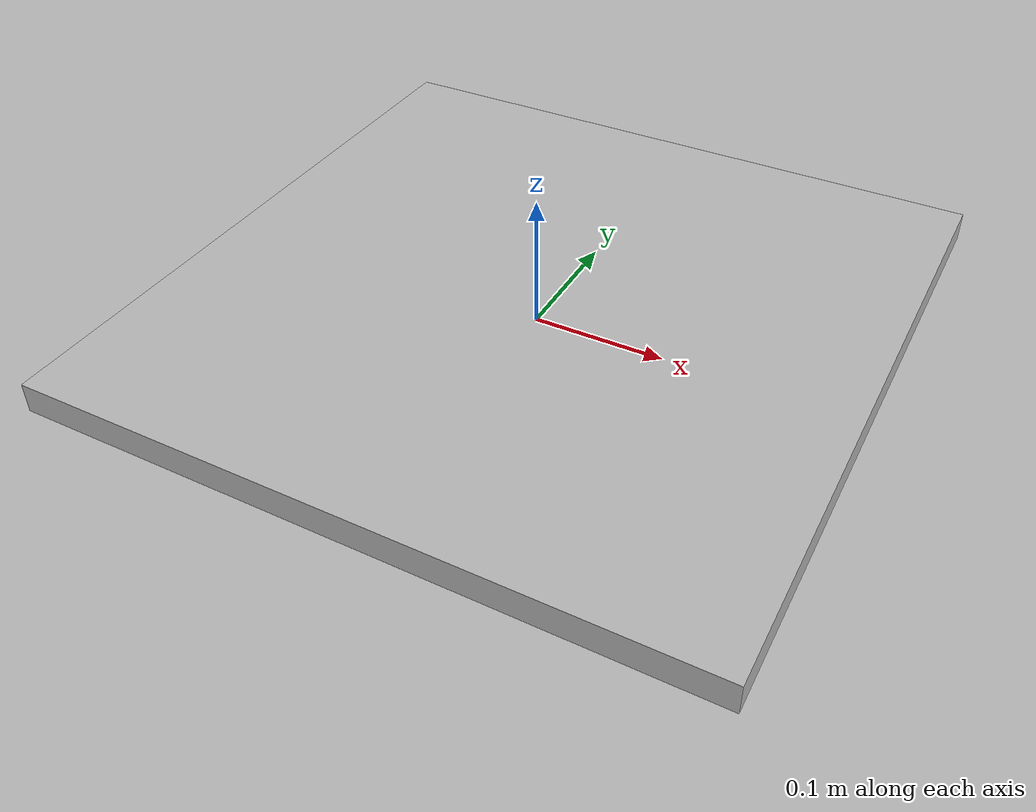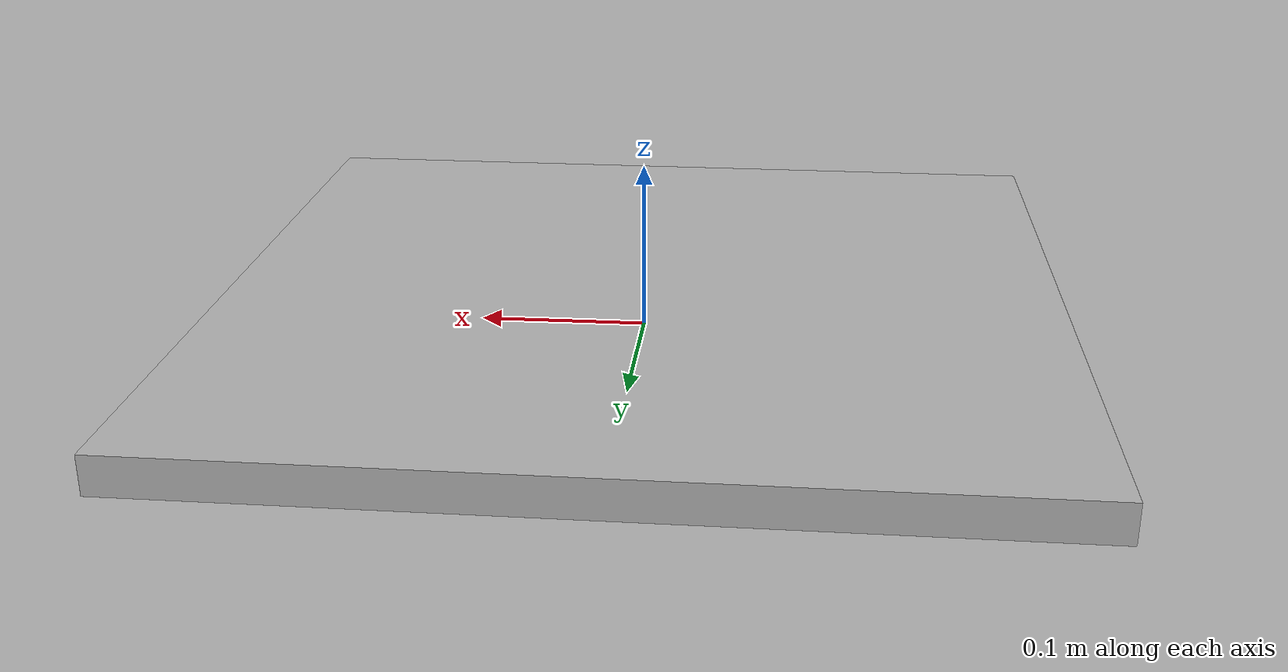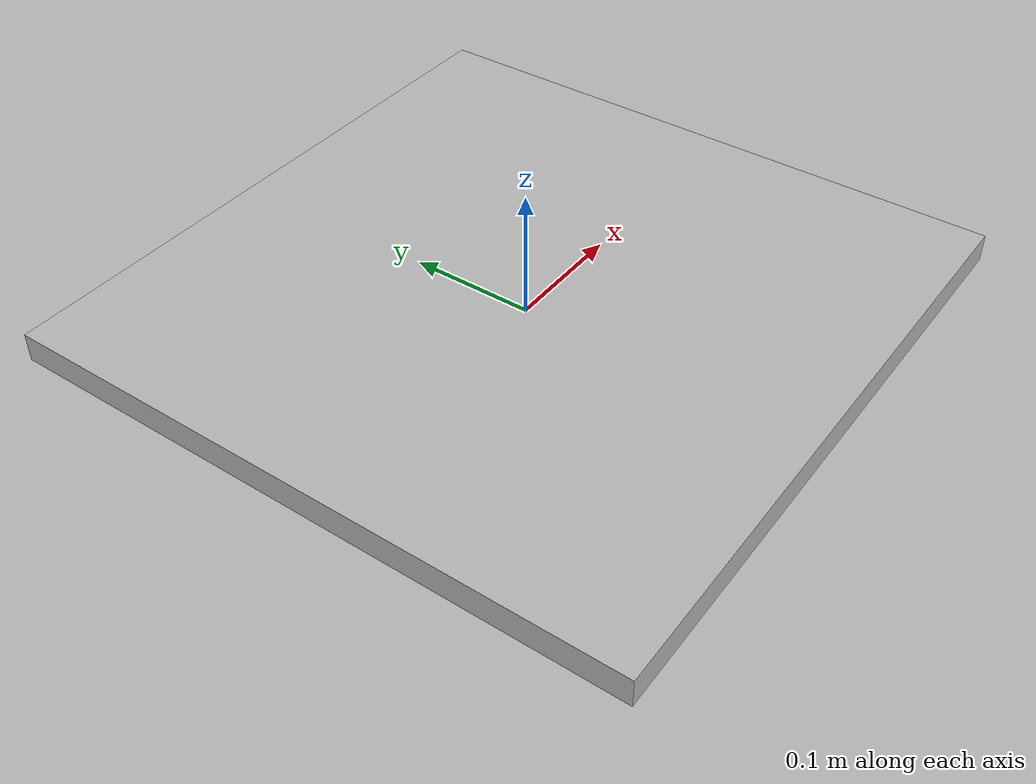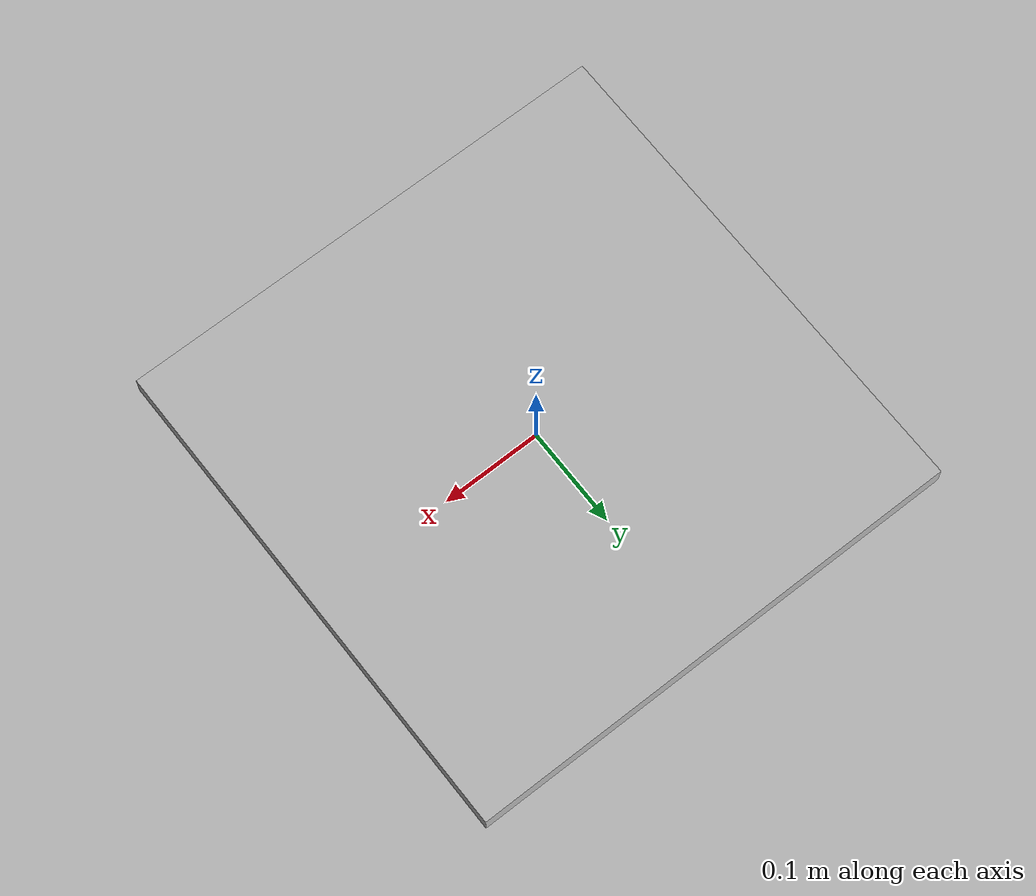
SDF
<?xml version="1.0" ?>
<sdf version='1.4'>
  <world name='default'>

    <physics name='default_physics' default='0' type='ode'>
      <gravity>0 0 -9.8066</gravity>
      <ode>
        <solver>
          <type>quick</type>
          <iters>10</iters>
          <sor>1.3</sor>
          <use_dynamic_moi_rescaling>0</use_dynamic_moi_rescaling>
        </solver>
        <constraints>
          <cfm>0</cfm>
          <erp>0.2</erp>
          <contact_max_correcting_vel>100</contact_max_correcting_vel>
          <contact_surface_layer>0.001</contact_surface_layer>
        </constraints>
      </ode>
      <max_step_size>0.004</max_step_size>
      <real_time_factor>1</real_time_factor>
      <real_time_update_rate>250</real_time_update_rate>
      <magnetic_field>6.0e-6 2.3e-5 -4.2e-5</magnetic_field>
    </physics>

    <spherical_coordinates>
      <surface_model>EARTH_WGS84</surface_model>
      <latitude_deg>0</latitude_deg>
      <longitude_deg>0</longitude_deg>
      <elevation>0</elevation>
      <heading_deg>0</heading_deg>
    </spherical_coordinates>

    <!-- A global light source -->
   <scene>
      <sky>
        <clouds>
          <speed>12</speed>
        </clouds>
      </sky>
   </scene>

    <include>
      <uri>model://sun</uri>
    </include>

     <include>
      <uri>model://ar_tag_13</uri>
    </include>

    <include>
      <pose>0 0 0 0 0 1.482587</pose>
      <uri>model://eupener</uri>
    </include>

    <gui fullscreen='0'>
      <camera name='user_camera'>
        <pose>159.908 -1.39949 83.4967 0 0.559643 -3.11099</pose>
        <view_controller>orbit</view_controller>
      </camera>
    </gui>
  </world>
</sdf>

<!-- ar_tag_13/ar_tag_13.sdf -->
<sdf version='1.5'>
  <model name='ar_tag_13'>
    <static>true</static>
    <link name="link">
      <collision name="collision">
        <geometry>
          <box>
            <size>0.5 0.5 .05</size>
          </box>
        </geometry>
          <surface>
            <friction>
              <ode>
                <mu>0.2</mu>
                <mu2>0.2</mu2>
              </ode>
            </friction>
          </surface>
      </collision>
      <visual name="visual">
        <cast_shadows>false</cast_shadows>
        <geometry>
          <box>
            <size>0.5 0.5 .05</size>
          </box>
        </geometry>
        <material>
          <script>
            <name>ar_tag_13</name>
            <uri>model://ar_tag_13/materials/scripts</uri>
            <uri>model://ar_tag_13/materials/textures</uri>
          </script>
        </material>
      </visual>
    </link>
  </model>
</sdf>

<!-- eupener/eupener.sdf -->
<sdf version='1.5'>
  <model name='eupener'>
    <static>true</static>
    <link name="link">
      <collision name="collision">
        <geometry>
          <box>
            <size>150 300 .005</size>
          </box>
        </geometry>
          <surface>
            <friction>
              <ode>
                <mu>0.2</mu>
                <mu2>0.2</mu2>
              </ode>
            </friction>
          </surface>
      </collision>
      <visual name="visual">
        <cast_shadows>false</cast_shadows>
        <geometry>
          <box>
            <size>150 300 .005</size>
          </box>
        </geometry>
        <material>
          <script>
            <name>eupener</name>
            <uri>model://eupener/materials/scripts</uri>
            <uri>model://eupener/materials/textures</uri>
          </script>
        </material>
      </visual>
    </link>
  </model>
</sdf>
